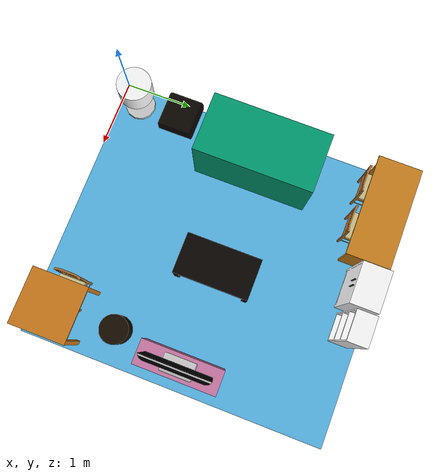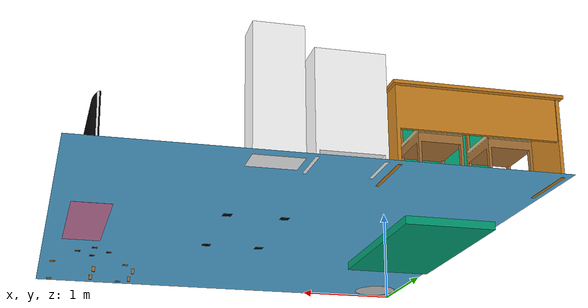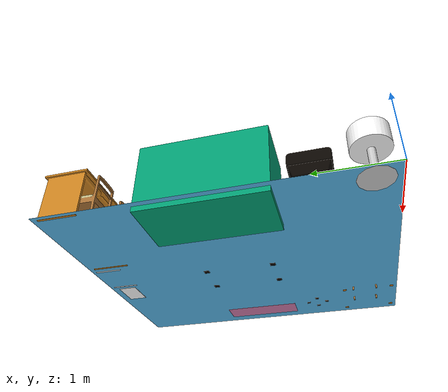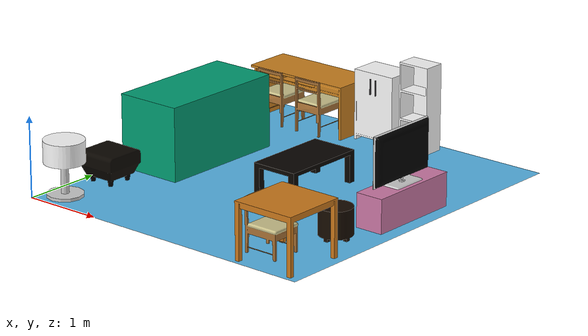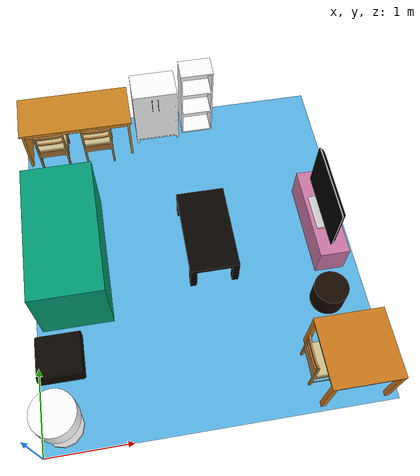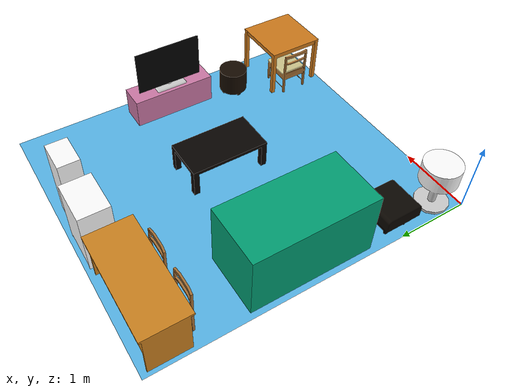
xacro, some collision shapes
<?xml version="1.0"?>
<!-- Environments of ROS-TMS project -->
<robot name="environments_standalone"
       xmlns:sensor="http://playerstage.sourceforge.net/gazebo/xmlschema/#sensor"
       xmlns:controller="http://playerstage.sourceforge.net/gazebo/xmlschema/#controller"
       xmlns:interface="http://playerstage.sourceforge.net/gazebo/xmlschema/#interface"
       xmlns:xacro="http://ros.org/wiki/xacro">

  <!-- Import common properties -->
  <xacro:include filename="$(find rostms_description)/urdf/common_properties.urdf.xacro" />

  <!-- Used for fixing all components to 'world' frame of RViz and Gazebo 'world' -->
  <link name="world_link"/>

  <joint name="world_bsen_room_joint" type="fixed">
    <parent link="world_link"/>
    <child link="928_room_link"/>
    <origin xyz="0 0 0" rpy="0 0 0"/>
  </joint>

  <!-- Defines the component tags -->
  <xacro:include filename="$(find rostms_description)/urdf/environments_928.urdf.xacro" />
  <xacro:environments/>
</robot>

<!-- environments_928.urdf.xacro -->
<!-- Environments of ROS-TMS -->
<robot name="environments" xmlns:xacro="http://ros.org/wiki/xacro">

  <!-- Import all Gazebo-customization elements, including Gazebo colors -->
  <xacro:include filename="$(find rostms_description)/urdf/environments_gazebo.urdf.xacro"/>

  <xacro:macro name="environments">

    <!--  Environment -->
    <link name="928_room_link">
      <visual>
        <geometry>
          <mesh filename="package://environmental_model/928_model/floor.dae"/>
        </geometry>
        <origin xyz="0 0 0.001" rpy="0 0 0"/>
      </visual>
      <collision>
        <geometry>
          <box size="4.0 4.5 0.001"/>
        </geometry>
        <origin xyz="2.0 2.25 -0.001" rpy="0 0 0"/>
      </collision>
      <inertial>
        <origin xyz="0 0 0.001" rpy="0 0 0"/>
        <mass value="100"/>
        <inertia
          ixx="1.0" ixy="0.0" ixz="0.0"
          iyy="1.0" iyz="0.0"
          izz="1.0"/>
      </inertial>
    </link>

    <!-- sofa -->
    <joint name="sofa_joint" type="fixed">
      <parent link="928_room_link"/>
      <child link="sofa_link"/>
      <origin xyz="0.50 2.3 0.425" rpy="0 0 0"/>
    </joint>

    <link name="sofa_link">
      <visual>
        <geometry>
          <mesh filename="package://environmental_model/928_model/sofa.dae"/>
        </geometry>
      </visual>
      <collision>
        <geometry>
          <box size="0.85 1.7 1.0"/>
        </geometry>
      </collision>
    </link>

    <!-- table @ desk -->
    <joint name="desk_joint" type="fixed">
      <parent link="928_room_link"/>
      <child link="desk_link"/>
      <origin xyz="0.75 4.15 0.350" rpy="0 0 -1.57079632679"/>
    </joint>

    <link name="desk_link">
      <visual>
        <geometry>
          <mesh filename="package://environmental_model/928_model/desk.dae"/>
        </geometry>
      </visual>
      <collision>
        <geometry>
          <box size="0.62 1.4 0.7"/>
        </geometry>
      </collision>
    </link>

    <!-- shelf_door -->
    <joint name="shelf_door_joint" type="fixed">
      <parent link="928_room_link"/>
      <child link="shelf_door_link"/>
      <origin xyz="1.82 4.25 0.475" rpy="0 0 -1.57079632679"/>
    </joint>

    <link name="shelf_door_link">
      <visual>
        <geometry>
          <mesh filename="package://environmental_model/928_model/shelf_door.dae"/>
        </geometry>
      </visual>
      <collision>
        <geometry>
          <box size="0.40 0.58 0.90"/>
        </geometry>
      </collision>
    </link>

    <joint name="shelf_joint" type="fixed">
      <parent link="928_room_link"/>
      <child link="shelf_link"/>
      <origin xyz="2.38 4.25 0.5505" rpy="0 0 -1.57079632679"/>
    </joint>

    <link name="shelf_link">
      <visual>
        <geometry>
          <mesh filename="package://environmental_model/928_model/shelf.dae"/>
        </geometry>
      </visual>
      <collision>
        <geometry>
          <box size="0.28 0.40 1.10"/>
        </geometry>
      </collision>
    </link>

    <joint name="table_joint" type="fixed">
      <parent link="928_room_link"/>
      <child link="table_link"/>
      <origin xyz="3.5 0.45 0.35" rpy="0 0 0"/>
    </joint>

    <link name="table_link">
      <visual>
        <geometry>
          <mesh filename="package://environmental_model/928_model/table.dae"/>
        </geometry>
      </visual>
      <collision>
        <geometry>
          <box size="0.80 0.80 0.70"/>
        </geometry>
      </collision>
    </link>

    <joint name="small_table_joint" type="fixed">
      <parent link="928_room_link"/>
      <child link="small_table_link"/>
      <origin xyz="2.2 2.3 0.2" rpy="0 0 1.57079632679"/>
    </joint>

    <link name="small_table_link">
      <visual>
        <geometry>
          <mesh filename="package://environmental_model/928_model/small_table.dae"/>
        </geometry>
      </visual>
      <collision>
        <geometry>
          <box size="1.1 0.6 0.4"/>
        </geometry>
      </collision>
    </link>

    <joint name="side_table_joint" type="fixed">
      <parent link="928_room_link"/>
      <child link="side_table_link"/>
      <origin xyz="0.25 0.3 0.001" rpy="0 0 0"/>
    </joint>

    <link name="side_table_link">
      <visual>
        <geometry>
          <mesh filename="package://environmental_model/928_model/side_table.dae"/>
        </geometry>
      </visual>
      <collision>
        <geometry>
          <box size="0.50 0.50 1.40"/>
        </geometry>
      </collision>
    </link>

    <!-- chair -->
    <joint name="desk_chair_joint1" type="fixed">
      <parent link="928_room_link"/>
      <child link="desk_chair_link1"/>
      <origin xyz="0.40 4.0 0.36" rpy="0 0 1.57079632679"/>
    </joint>

    <link name="desk_chair_link1">
      <visual>
        <geometry>
          <mesh filename="package://environmental_model/928_model/chair.dae"/>
        </geometry>
      </visual>
      <collision>
        <geometry>
          <box size="0.38 0.44 0.71"/>
        </geometry>
      </collision>
    </link>

    <joint name="desk_chair_joint2" type="fixed">
      <parent link="928_room_link"/>
      <child link="desk_chair_link2"/>
      <origin xyz="1.00 4.0 0.36" rpy="0 0 1.57079632679"/>
    </joint>

    <link name="desk_chair_link2">
      <visual>
        <geometry>
          <mesh filename="package://environmental_model/928_model/chair.dae"/>
        </geometry>
      </visual>
      <collision>
        <geometry>
          <box size="0.38 0.44 0.71"/>
        </geometry>
      </collision>
    </link>

    <joint name="table_chair_joint" type="fixed">
      <parent link="928_room_link"/>
      <child link="table_chair_link"/>
      <origin xyz="3.25 0.5 0.3" rpy="0 0 0"/>
    </joint>

    <link name="table_chair_link">
      <visual>
        <geometry>
          <mesh filename="package://environmental_model/928_model/chair.dae"/>
        </geometry>
      </visual>
      <collision>
        <geometry>
          <box size="0.38 0.44 0.71"/>
        </geometry>
      </collision>
    </link>

    <joint name="circle_chair_joint" type="fixed">
      <parent link="928_room_link"/>
      <child link="circle_chair_link"/>
      <origin xyz="3.5 1.3 0.22" rpy="0 0 0"/>
    </joint>

    <link name="circle_chair_link">
      <visual>
        <geometry>
          <mesh filename="package://environmental_model/928_model/circle_chair.dae"/>
        </geometry>
      </visual>
      <collision>
        <geometry>
          <box size="0.50 0.50 0.69"/>
        </geometry>
      </collision>
    </link>

    <!-- tv -->
    <joint name="tv_joint" type="fixed">
      <parent link="928_room_link"/>
      <child link="tv_link"/>
      <origin xyz="3.65 2.3 0.75" rpy="0 0 3.14159265359"/>
    </joint>

    <link name="tv_link">
      <visual>
        <geometry>
          <mesh filename="package://environmental_model/928_model/tv.dae"/>
        </geometry>
      </visual>
      <collision>
        <geometry>
          <box size="0.3 1.0 0.7"/>
        </geometry>
      </collision>
    </link>

    <joint name="tv_table_joint" type="fixed">
      <parent link="928_room_link"/>
      <child link="tv_table_link"/>
      <origin xyz="3.65 2.3 0.21" rpy="0 0 3.14159265359"/>
    </joint>

    <link name="tv_table_link">
      <visual>
        <geometry>
          <mesh filename="package://environmental_model/928_model/tv_table.dae"/>
        </geometry>
      </visual>
      <collision>
        <geometry>
          <box size="0.36 1.2 0.42"/>
        </geometry>
      </collision>
    </link>

    <!-- other -->
    <joint name="foot_res_joint" type="fixed">
      <parent link="928_room_link"/>
      <child link="foot_res_link"/>
      <origin xyz="0.3 1.0 0.2" rpy="0 0 1.57079632679"/>
    </joint>

    <link name="foot_res_link">
      <visual>
        <geometry>
          <mesh filename="package://environmental_model/928_model/foot_res.dae"/>
        </geometry>
      </visual>
      <collision>
        <geometry>
          <box size="0.53 0.53 0.40"/>
        </geometry>
      </collision>
    </link>

    <xacro:environments_sim/>
  </xacro:macro>

</robot>
